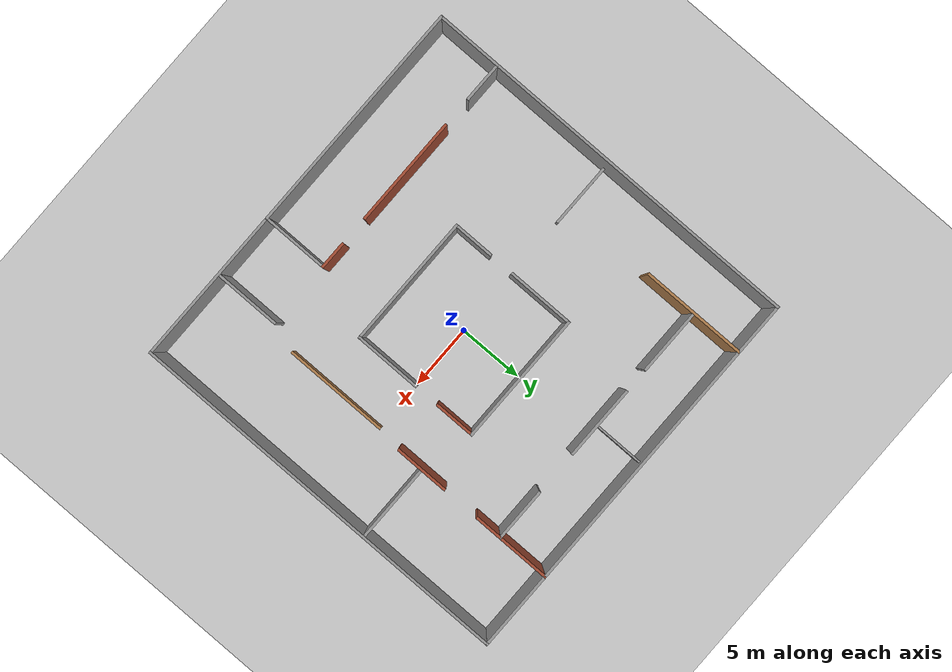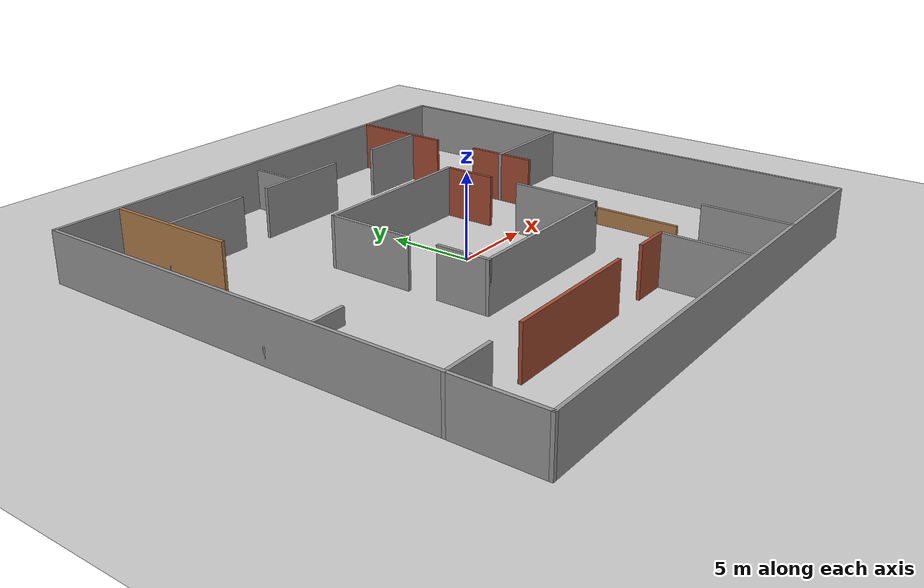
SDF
<sdf version="1.7">
 <world name="default">
  <light name="sun" type="directional">
   <pose>0 0 10 0 -0 0</pose>
   <diffuse>0.8 0.8 0.8 1</diffuse>
   <specular>0.2 0.2 0.2 1</specular>
   <attenuation>
    <range>1000</range>
    <constant>0.9</constant>
    <linear>0.01</linear>
    <quadratic>0.001</quadratic>
   </attenuation>
   <direction>-0.05 0.05 -0.99</direction>
   <spot><inner_angle>0</inner_angle><outer_angle>0</outer_angle><falloff>0</falloff></spot>
  </light>
  <model name="ground_plane">
   <static>1</static>
   <link name="link">
    <collision name="collision">
     <geometry><plane><normal>0 0 1</normal><size>100 100</size></plane></geometry>
     <surface>
      <contact><collide_bitmask>65535</collide_bitmask></contact>
      <friction><ode><mu>100</mu><mu2>50</mu2></ode></friction>
     </surface>
    </collision>
    <visual name="visual">
     <cast_shadows>0</cast_shadows>
     <geometry><plane><normal>0 0 1</normal><size>100 100</size></plane></geometry>
     <material>
      <script><uri>file://media/materials/scripts/gazebo.material</uri><name>Gazebo/Grey</name></script>
     </material>
    </visual>
   </link>
  </model>
  <gravity>0 0 -9.8</gravity>
  <magnetic_field>6e-06 2.3e-05 -4.2e-05</magnetic_field>
  <atmosphere type="adiabatic"/>
  <physics type="ode">
   <max_step_size>0.001</max_step_size>
   <real_time_factor>1</real_time_factor>
   <real_time_update_rate>1000</real_time_update_rate>
  </physics>
  <scene><ambient>0.4 0.4 0.4 1</ambient><background>0.7 0.7 0.7 1</background><shadows>1</shadows></scene>
  <spherical_coordinates>
   <surface_model>EARTH_WGS84</surface_model>
   <latitude_deg>0</latitude_deg>
   <longitude_deg>0</longitude_deg>
   <elevation>0</elevation>
   <heading_deg>0</heading_deg>
  </spherical_coordinates>
  <model name="Fence30">
   <link name="Wall_0">
    <collision name="Wall_0_Collision">
     <geometry><box><size>30.2 0.2 3</size></box></geometry>
     <pose>0 0 1.5 0 -0 0</pose>
    </collision>
    <visual name="Wall_0_Visual">
     <pose>0 0 1.5 0 -0 0</pose>
     <geometry><box><size>30.2 0.2 3</size></box></geometry>
     <material>
      <script><uri>file://media/materials/scripts/gazebo.material</uri><name>Gazebo/Grey</name></script>
      <ambient>1 1 1 1</ambient>
     </material>
     <meta><layer>0</layer></meta>
    </visual>
    <pose>0 -15 0 0 -0 3.14159</pose>
   </link>
   <link name="Wall_1">
    <collision name="Wall_1_Collision">
     <geometry><box><size>30.2 0.2 3</size></box></geometry>
     <pose>0 0 1.5 0 -0 0</pose>
    </collision>
    <visual name="Wall_1_Visual">
     <pose>0 0 1.5 0 -0 0</pose>
     <geometry><box><size>30.2 0.2 3</size></box></geometry>
     <material>
      <script><uri>file://media/materials/scripts/gazebo.material</uri><name>Gazebo/Grey</name></script>
      <ambient>1 1 1 1</ambient>
     </material>
     <meta><layer>0</layer></meta>
    </visual>
    <pose>-15 0 0 0 -0 1.5708</pose>
   </link>
   <link name="Wall_2">
    <collision name="Wall_2_Collision">
     <geometry><box><size>30.2 0.2 3</size></box></geometry>
     <pose>0 0 1.5 0 -0 0</pose>
    </collision>
    <visual name="Wall_2_Visual">
     <pose>0 0 1.5 0 -0 0</pose>
     <geometry><box><size>30.2 0.2 3</size></box></geometry>
     <material>
      <script><uri>file://media/materials/scripts/gazebo.material</uri><name>Gazebo/Grey</name></script>
      <ambient>1 1 1 1</ambient>
     </material>
     <meta><layer>0</layer></meta>
    </visual>
    <pose>0 15 0 0 -0 0</pose>
   </link>
   <link name="Wall_3">
    <collision name="Wall_3_Collision">
     <geometry><box><size>30.2 0.2 3</size></box></geometry>
     <pose>0 0 1.5 0 -0 0</pose>
    </collision>
    <visual name="Wall_3_Visual">
     <pose>0 0 1.5 0 -0 0</pose>
     <geometry><box><size>30.2 0.2 3</size></box></geometry>
     <material>
      <script><uri>file://media/materials/scripts/gazebo.material</uri><name>Gazebo/Grey</name></script>
      <ambient>1 1 1 1</ambient>
     </material>
     <meta><layer>0</layer></meta>
    </visual>
    <pose>15 0 0 0 -0 -1.5708</pose>
   </link>
   <static>1</static>
  </model>
  <model name="Office30">
   <link name="Wall_46">
    <pose>0 5 0 0 -0 0</pose>
    <visual name="Wall_46_Visual">
     <pose>0 0 1.5 0 -0 0</pose>
     <geometry><box><size>10.2 0.2 3</size></box></geometry>
     <material>
      <script><uri>file://media/materials/scripts/gazebo.material</uri><name>Gazebo/Grey</name></script>
      <ambient>1 1 1 1</ambient>
      <shader type="pixel"/>
     </material>
     <meta><layer>0</layer></meta>
    </visual>
    <collision name="Wall_46_Collision">
     <pose>0 0 1.5 0 -0 0</pose>
     <geometry><box><size>10.2 0.2 3</size></box></geometry>
     <surface>
      <friction>
       <ode><mu>1</mu><mu2>1</mu2><fdir1>0 0 0</fdir1><slip1>0</slip1><slip2>0</slip2></ode>
       <torsional>
        <coefficient>1</coefficient>
        <patch_radius>0</patch_radius>
        <surface_radius>0</surface_radius>
        <use_patch_radius>1</use_patch_radius>
        <ode><slip>0</slip></ode>
       </torsional>
      </friction>
      <bounce><restitution_coefficient>0</restitution_coefficient><threshold>1e+06</threshold></bounce>
      <contact>
       <collide_without_contact>0</collide_without_contact>
       <collide_without_contact_bitmask>1</collide_without_contact_bitmask>
       <collide_bitmask>1</collide_bitmask>
       <ode>
        <soft_cfm>0</soft_cfm>
        <soft_erp>0.2</soft_erp>
        <kp>1e+13</kp>
        <kd>1</kd>
        <max_vel>0.01</max_vel>
        <min_depth>0</min_depth>
       </ode>
       <bullet>
        <split_impulse>1</split_impulse>
        <split_impulse_penetration_threshold>-0.01</split_impulse_penetration_threshold>
        <soft_cfm>0</soft_cfm>
        <soft_erp>0.2</soft_erp>
        <kp>1e+13</kp>
        <kd>1</kd>
       </bullet>
      </contact>
     </surface>
    </collision>
   </link>
   <link name="Wall_48">
    <pose>0 -5 0 0 -0 0</pose>
    <visual name="Wall_48_Visual">
     <pose>0 0 1.5 0 -0 0</pose>
     <geometry><box><size>10.2 0.2 3</size></box></geometry>
     <material>
      <script><uri>file://media/materials/scripts/gazebo.material</uri><name>Gazebo/Grey</name></script>
      <ambient>1 1 1 1</ambient>
      <shader type="pixel"/>
     </material>
     <meta><layer>0</layer></meta>
    </visual>
    <collision name="Wall_48_Collision">
     <pose>0 0 1.5 0 -0 0</pose>
     <geometry><box><size>10.2 0.2 3</size></box></geometry>
     <surface>
      <friction>
       <ode><mu>1</mu><mu2>1</mu2><fdir1>0 0 0</fdir1><slip1>0</slip1><slip2>0</slip2></ode>
       <torsional>
        <coefficient>1</coefficient>
        <patch_radius>0</patch_radius>
        <surface_radius>0</surface_radius>
        <use_patch_radius>1</use_patch_radius>
        <ode><slip>0</slip></ode>
       </torsional>
      </friction>
      <bounce><restitution_coefficient>0</restitution_coefficient><threshold>1e+06</threshold></bounce>
      <contact>
       <collide_without_contact>0</collide_without_contact>
       <collide_without_contact_bitmask>1</collide_without_contact_bitmask>
       <collide_bitmask>1</collide_bitmask>
       <ode>
        <soft_cfm>0</soft_cfm>
        <soft_erp>0.2</soft_erp>
        <kp>1e+13</kp>
        <kd>1</kd>
        <max_vel>0.01</max_vel>
        <min_depth>0</min_depth>
       </ode>
       <bullet>
        <split_impulse>1</split_impulse>
        <split_impulse_penetration_threshold>-0.01</split_impulse_penetration_threshold>
        <soft_cfm>0</soft_cfm>
        <soft_erp>0.2</soft_erp>
        <kp>1e+13</kp>
        <kd>1</kd>
       </bullet>
      </contact>
     </surface>
    </collision>
   </link>
   <link name="Wall_50">
    <pose>5 -2.5 0 0 -0 1.5708</pose>
    <visual name="Wall_50_Visual">
     <pose>0 0 1.5 0 -0 0</pose>
     <geometry><box><size>5.2 0.2 3</size></box></geometry>
     <material>
      <script><uri>file://media/materials/scripts/gazebo.material</uri><name>Gazebo/Grey</name></script>
      <ambient>1 1 1 1</ambient>
      <shader type="pixel"/>
     </material>
     <meta><layer>0</layer></meta>
    </visual>
    <collision name="Wall_50_Collision">
     <pose>0 0 1.5 0 -0 0</pose>
     <geometry><box><size>5.2 0.2 3</size></box></geometry>
     <surface>
      <friction>
       <ode><mu>1</mu><mu2>1</mu2><fdir1>0 0 0</fdir1><slip1>0</slip1><slip2>0</slip2></ode>
       <torsional>
        <coefficient>1</coefficient>
        <patch_radius>0</patch_radius>
        <surface_radius>0</surface_radius>
        <use_patch_radius>1</use_patch_radius>
        <ode><slip>0</slip></ode>
       </torsional>
      </friction>
      <bounce><restitution_coefficient>0</restitution_coefficient><threshold>1e+06</threshold></bounce>
      <contact>
       <collide_without_contact>0</collide_without_contact>
       <collide_without_contact_bitmask>1</collide_without_contact_bitmask>
       <collide_bitmask>1</collide_bitmask>
       <ode>
        <soft_cfm>0</soft_cfm>
        <soft_erp>0.2</soft_erp>
        <kp>1e+13</kp>
        <kd>1</kd>
        <max_vel>0.01</max_vel>
        <min_depth>0</min_depth>
       </ode>
       <bullet>
        <split_impulse>1</split_impulse>
        <split_impulse_penetration_threshold>-0.01</split_impulse_penetration_threshold>
        <soft_cfm>0</soft_cfm>
        <soft_erp>0.2</soft_erp>
        <kp>1e+13</kp>
        <kd>1</kd>
       </bullet>
      </contact>
     </surface>
    </collision>
   </link>
   <link name="Wall_52">
    <pose>5 3.5 0 0 0 -1.5708</pose>
    <visual name="Wall_52_Visual">
     <pose>0 0 1.5 0 -0 0</pose>
     <geometry><box><size>3.2 0.2 3</size></box></geometry>
     <material>
      <script><uri>file://media/materials/scripts/gazebo.material</uri><name>Gazebo/Bricks</name></script>
      <ambient>1 1 1 1</ambient>
      <shader type="pixel"/>
     </material>
     <meta><layer>0</layer></meta>
    </visual>
    <collision name="Wall_52_Collision">
     <pose>0 0 1.5 0 -0 0</pose>
     <geometry><box><size>3.2 0.2 3</size></box></geometry>
     <surface>
      <friction>
       <ode><mu>1</mu><mu2>1</mu2><fdir1>0 0 0</fdir1><slip1>0</slip1><slip2>0</slip2></ode>
       <torsional>
        <coefficient>1</coefficient>
        <patch_radius>0</patch_radius>
        <surface_radius>0</surface_radius>
        <use_patch_radius>1</use_patch_radius>
        <ode><slip>0</slip></ode>
       </torsional>
      </friction>
      <bounce><restitution_coefficient>0</restitution_coefficient><threshold>1e+06</threshold></bounce>
      <contact>
       <collide_without_contact>0</collide_without_contact>
       <collide_without_contact_bitmask>1</collide_without_contact_bitmask>
       <collide_bitmask>1</collide_bitmask>
       <ode>
        <soft_cfm>0</soft_cfm>
        <soft_erp>0.2</soft_erp>
        <kp>1e+13</kp>
        <kd>1</kd>
        <max_vel>0.01</max_vel>
        <min_depth>0</min_depth>
       </ode>
       <bullet>
        <split_impulse>1</split_impulse>
        <split_impulse_penetration_threshold>-0.01</split_impulse_penetration_threshold>
        <soft_cfm>0</soft_cfm>
        <soft_erp>0.2</soft_erp>
        <kp>1e+13</kp>
        <kd>1</kd>
       </bullet>
      </contact>
     </surface>
    </collision>
   </link>
   <link name="Wall_54">
    <pose>9 -4 0 0 -0 1.5708</pose>
    <visual name="Wall_54_Visual">
     <pose>0 0 0.5 0 -0 0</pose>
     <geometry><box><size>8.2 0.2 1</size></box></geometry>
     <material>
      <script><uri>file://media/materials/scripts/gazebo.material</uri><name>Gazebo/Wood</name></script>
      <ambient>1 1 1 1</ambient>
      <shader type="pixel"/>
     </material>
     <meta><layer>0</layer></meta>
    </visual>
    <collision name="Wall_54_Collision">
     <pose>0 0 0.5 0 -0 0</pose>
     <geometry><box><size>8.2 0.2 1</size></box></geometry>
     <surface>
      <friction>
       <ode><mu>1</mu><mu2>1</mu2><fdir1>0 0 0</fdir1><slip1>0</slip1><slip2>0</slip2></ode>
       <torsional>
        <coefficient>1</coefficient>
        <patch_radius>0</patch_radius>
        <surface_radius>0</surface_radius>
        <use_patch_radius>1</use_patch_radius>
        <ode><slip>0</slip></ode>
       </torsional>
      </friction>
      <bounce><restitution_coefficient>0</restitution_coefficient><threshold>1e+06</threshold></bounce>
      <contact>
       <collide_without_contact>0</collide_without_contact>
       <collide_without_contact_bitmask>1</collide_without_contact_bitmask>
       <collide_bitmask>1</collide_bitmask>
       <ode>
        <soft_cfm>0</soft_cfm>
        <soft_erp>0.2</soft_erp>
        <kp>1e+13</kp>
        <kd>1</kd>
        <max_vel>0.01</max_vel>
        <min_depth>0</min_depth>
       </ode>
       <bullet>
        <split_impulse>1</split_impulse>
        <split_impulse_penetration_threshold>-0.01</split_impulse_penetration_threshold>
        <soft_cfm>0</soft_cfm>
        <soft_erp>0.2</soft_erp>
        <kp>1e+13</kp>
        <kd>1</kd>
       </bullet>
      </contact>
     </surface>
    </collision>
   </link>
   <link name="Wall_59">
    <pose>-5 2.5 0 0 0 -1.5708</pose>
    <visual name="Wall_59_Visual">
     <pose>0 0 1.5 0 -0 0</pose>
     <geometry><box><size>5.2 0.2 3</size></box></geometry>
     <material>
      <script><uri>file://media/materials/scripts/gazebo.material</uri><name>Gazebo/Grey</name></script>
      <ambient>1 1 1 1</ambient>
      <shader type="pixel"/>
     </material>
     <meta><layer>0</layer></meta>
    </visual>
    <collision name="Wall_59_Collision">
     <pose>0 0 1.5 0 -0 0</pose>
     <geometry><box><size>5.2 0.2 3</size></box></geometry>
     <surface>
      <friction>
       <ode><mu>1</mu><mu2>1</mu2><fdir1>0 0 0</fdir1><slip1>0</slip1><slip2>0</slip2></ode>
       <torsional>
        <coefficient>1</coefficient>
        <patch_radius>0</patch_radius>
        <surface_radius>0</surface_radius>
        <use_patch_radius>1</use_patch_radius>
        <ode><slip>0</slip></ode>
       </torsional>
      </friction>
      <bounce><restitution_coefficient>0</restitution_coefficient><threshold>1e+06</threshold></bounce>
      <contact>
       <collide_without_contact>0</collide_without_contact>
       <collide_without_contact_bitmask>1</collide_without_contact_bitmask>
       <collide_bitmask>1</collide_bitmask>
       <ode>
        <soft_cfm>0</soft_cfm>
        <soft_erp>0.2</soft_erp>
        <kp>1e+13</kp>
        <kd>1</kd>
        <max_vel>0.01</max_vel>
        <min_depth>0</min_depth>
       </ode>
       <bullet>
        <split_impulse>1</split_impulse>
        <split_impulse_penetration_threshold>-0.01</split_impulse_penetration_threshold>
        <soft_cfm>0</soft_cfm>
        <soft_erp>0.2</soft_erp>
        <kp>1e+13</kp>
        <kd>1</kd>
       </bullet>
      </contact>
     </surface>
    </collision>
   </link>
   <link name="Wall_61">
    <pose>-5 -3.5 0 0 -0 1.5708</pose>
    <visual name="Wall_61_Visual">
     <pose>0 0 1.5 0 -0 0</pose>
     <geometry><box><size>3.2 0.2 3</size></box></geometry>
     <material>
      <script><uri>file://media/materials/scripts/gazebo.material</uri><name>Gazebo/Grey</name></script>
      <ambient>1 1 1 1</ambient>
      <shader type="pixel"/>
     </material>
     <meta><layer>0</layer></meta>
    </visual>
    <collision name="Wall_61_Collision">
     <pose>0 0 1.5 0 -0 0</pose>
     <geometry><box><size>3.2 0.2 3</size></box></geometry>
     <surface>
      <friction>
       <ode><mu>1</mu><mu2>1</mu2><fdir1>0 0 0</fdir1><slip1>0</slip1><slip2>0</slip2></ode>
       <torsional>
        <coefficient>1</coefficient>
        <patch_radius>0</patch_radius>
        <surface_radius>0</surface_radius>
        <use_patch_radius>1</use_patch_radius>
        <ode><slip>0</slip></ode>
       </torsional>
      </friction>
      <bounce><restitution_coefficient>0</restitution_coefficient><threshold>1e+06</threshold></bounce>
      <contact>
       <collide_without_contact>0</collide_without_contact>
       <collide_without_contact_bitmask>1</collide_without_contact_bitmask>
       <collide_bitmask>1</collide_bitmask>
       <ode>
        <soft_cfm>0</soft_cfm>
        <soft_erp>0.2</soft_erp>
        <kp>1e+13</kp>
        <kd>1</kd>
        <max_vel>0.01</max_vel>
        <min_depth>0</min_depth>
       </ode>
       <bullet>
        <split_impulse>1</split_impulse>
        <split_impulse_penetration_threshold>-0.01</split_impulse_penetration_threshold>
        <soft_cfm>0</soft_cfm>
        <soft_erp>0.2</soft_erp>
        <kp>1e+13</kp>
        <kd>1</kd>
       </bullet>
      </contact>
     </surface>
    </collision>
   </link>
   <link name="Wall_63">
    <pose>9 4 0 0 -0 1.5708</pose>
    <visual name="Wall_63_Visual">
     <pose>0 0 1.5 0 -0 0</pose>
     <geometry><box><size>4.2 0.2 3</size></box></geometry>
     <material>
      <script><uri>file://media/materials/scripts/gazebo.material</uri><name>Gazebo/Bricks</name></script>
      <ambient>1 1 1 1</ambient>
      <shader type="pixel"/>
     </material>
     <meta><layer>0</layer></meta>
    </visual>
    <collision name="Wall_63_Collision">
     <pose>0 0 1.5 0 -0 0</pose>
     <geometry><box><size>4.2 0.2 3</size></box></geometry>
     <surface>
      <friction>
       <ode><mu>1</mu><mu2>1</mu2><fdir1>0 0 0</fdir1><slip1>0</slip1><slip2>0</slip2></ode>
       <torsional>
        <coefficient>1</coefficient>
        <patch_radius>0</patch_radius>
        <surface_radius>0</surface_radius>
        <use_patch_radius>1</use_patch_radius>
        <ode><slip>0</slip></ode>
       </torsional>
      </friction>
      <bounce><restitution_coefficient>0</restitution_coefficient><threshold>1e+06</threshold></bounce>
      <contact>
       <collide_without_contact>0</collide_without_contact>
       <collide_without_contact_bitmask>1</collide_without_contact_bitmask>
       <collide_bitmask>1</collide_bitmask>
       <ode>
        <soft_cfm>0</soft_cfm>
        <soft_erp>0.2</soft_erp>
        <kp>1e+13</kp>
        <kd>1</kd>
        <max_vel>0.01</max_vel>
        <min_depth>0</min_depth>
       </ode>
       <bullet>
        <split_impulse>1</split_impulse>
        <split_impulse_penetration_threshold>-0.01</split_impulse_penetration_threshold>
        <soft_cfm>0</soft_cfm>
        <soft_erp>0.2</soft_erp>
        <kp>1e+13</kp>
        <kd>1</kd>
       </bullet>
      </contact>
     </surface>
    </collision>
   </link>
   <link name="Wall_65">
    <pose>9 12 0 0 -0 1.5708</pose>
    <visual name="Wall_65_Visual">
     <pose>0 0 1.5 0 -0 0</pose>
     <geometry><box><size>6.2 0.2 3</size></box></geometry>
     <material>
      <script><uri>file://media/materials/scripts/gazebo.material</uri><name>Gazebo/Bricks</name></script>
      <ambient>1 1 1 1</ambient>
      <shader type="pixel"/>
     </material>
     <meta><layer>0</layer></meta>
    </visual>
    <collision name="Wall_65_Collision">
     <pose>0 0 1.5 0 -0 0</pose>
     <geometry><box><size>6.2 0.2 3</size></box></geometry>
     <surface>
      <friction>
       <ode><mu>1</mu><mu2>1</mu2><fdir1>0 0 0</fdir1><slip1>0</slip1><slip2>0</slip2></ode>
       <torsional>
        <coefficient>1</coefficient>
        <patch_radius>0</patch_radius>
        <surface_radius>0</surface_radius>
        <use_patch_radius>1</use_patch_radius>
        <ode><slip>0</slip></ode>
       </torsional>
      </friction>
      <bounce><restitution_coefficient>0</restitution_coefficient><threshold>1e+06</threshold></bounce>
      <contact>
       <collide_without_contact>0</collide_without_contact>
       <collide_without_contact_bitmask>1</collide_without_contact_bitmask>
       <collide_bitmask>1</collide_bitmask>
       <ode>
        <soft_cfm>0</soft_cfm>
        <soft_erp>0.2</soft_erp>
        <kp>1e+13</kp>
        <kd>1</kd>
        <max_vel>0.01</max_vel>
        <min_depth>0</min_depth>
       </ode>
       <bullet>
        <split_impulse>1</split_impulse>
        <split_impulse_penetration_threshold>-0.01</split_impulse_penetration_threshold>
        <soft_cfm>0</soft_cfm>
        <soft_erp>0.2</soft_erp>
        <kp>1e+13</kp>
        <kd>1</kd>
       </bullet>
      </contact>
     </surface>
    </collision>
   </link>
   <link name="Wall_67">
    <pose>-13.5 -10 0 0 -0 0</pose>
    <visual name="Wall_67_Visual">
     <pose>0 0 1.5 0 -0 0</pose>
     <geometry><box><size>3.2 0.2 3</size></box></geometry>
     <material>
      <script><uri>file://media/materials/scripts/gazebo.material</uri><name>Gazebo/Grey</name></script>
      <ambient>1 1 1 1</ambient>
      <shader type="pixel"/>
     </material>
     <meta><layer>0</layer></meta>
    </visual>
    <collision name="Wall_67_Collision">
     <pose>0 0 1.5 0 -0 0</pose>
     <geometry><box><size>3.2 0.2 3</size></box></geometry>
     <surface>
      <friction>
       <ode><mu>1</mu><mu2>1</mu2><fdir1>0 0 0</fdir1><slip1>0</slip1><slip2>0</slip2></ode>
       <torsional>
        <coefficient>1</coefficient>
        <patch_radius>0</patch_radius>
        <surface_radius>0</surface_radius>
        <use_patch_radius>1</use_patch_radius>
        <ode><slip>0</slip></ode>
       </torsional>
      </friction>
      <bounce><restitution_coefficient>0</restitution_coefficient><threshold>1e+06</threshold></bounce>
      <contact>
       <collide_without_contact>0</collide_without_contact>
       <collide_without_contact_bitmask>1</collide_without_contact_bitmask>
       <collide_bitmask>1</collide_bitmask>
       <ode>
        <soft_cfm>0</soft_cfm>
        <soft_erp>0.2</soft_erp>
        <kp>1e+13</kp>
        <kd>1</kd>
        <max_vel>0.01</max_vel>
        <min_depth>0</min_depth>
       </ode>
       <bullet>
        <split_impulse>1</split_impulse>
        <split_impulse_penetration_threshold>-0.01</split_impulse_penetration_threshold>
        <soft_cfm>0</soft_cfm>
        <soft_erp>0.2</soft_erp>
        <kp>1e+13</kp>
        <kd>1</kd>
       </bullet>
      </contact>
     </surface>
    </collision>
   </link>
   <link name="Wall_69">
    <pose>-5.47371 -10 0 0 -0 0</pose>
    <inertial>
     <inertia><ixx>0</ixx><ixy>0</ixy><ixz>0</ixz><iyy>0</iyy><iyz>0</iyz><izz>0</izz></inertia>
     <mass>0</mass>
    </inertial>
    <visual name="Wall_69_Visual">
     <pose>0 0 1.5 0 -0 0</pose>
     <geometry><box><size>8.48445 0.2 3</size></box></geometry>
     <material>
      <script><uri>file://media/materials/scripts/gazebo.material</uri><name>Gazebo/Bricks</name></script>
      <ambient>1 1 1 1</ambient>
      <shader type="pixel"/>
     </material>
     <meta><layer>0</layer></meta>
    </visual>
    <collision name="Wall_69_Collision">
     <pose>0 0 1.5 0 -0 0</pose>
     <geometry><box><size>8.48445 0.2 3</size></box></geometry>
     <surface>
      <friction>
       <ode><mu>1</mu><mu2>1</mu2><fdir1>0 0 0</fdir1><slip1>0</slip1><slip2>0</slip2></ode>
       <torsional>
        <coefficient>1</coefficient>
        <patch_radius>0</patch_radius>
        <surface_radius>0</surface_radius>
        <use_patch_radius>1</use_patch_radius>
        <ode><slip>0</slip></ode>
       </torsional>
      </friction>
      <bounce><restitution_coefficient>0</restitution_coefficient><threshold>1e+06</threshold></bounce>
      <contact>
       <collide_without_contact>0</collide_without_contact>
       <collide_without_contact_bitmask>1</collide_without_contact_bitmask>
       <collide_bitmask>1</collide_bitmask>
       <ode>
        <soft_cfm>0</soft_cfm>
        <soft_erp>0.2</soft_erp>
        <kp>1e+13</kp>
        <kd>1</kd>
        <max_vel>0.01</max_vel>
        <min_depth>0</min_depth>
       </ode>
       <bullet>
        <split_impulse>1</split_impulse>
        <split_impulse_penetration_threshold>-0.01</split_impulse_penetration_threshold>
        <soft_cfm>0</soft_cfm>
        <soft_erp>0.2</soft_erp>
        <kp>1e+13</kp>
        <kd>1</kd>
       </bullet>
      </contact>
     </surface>
    </collision>
   </link>
   <link name="Wall_71">
    <pose>2 -10 0 0 -0 0</pose>
    <visual name="Wall_71_Visual">
     <pose>0 0 1.5 0 -0 0</pose>
     <geometry><box><size>2.2 0.2 3</size></box></geometry>
     <material>
      <script><uri>file://media/materials/scripts/gazebo.material</uri><name>Gazebo/Bricks</name></script>
      <ambient>1 1 1 1</ambient>
      <shader type="pixel"/>
     </material>
     <meta><layer>0</layer></meta>
    </visual>
    <collision name="Wall_71_Collision">
     <pose>0 0 1.5 0 -0 0</pose>
     <geometry><box><size>2.2 0.2 3</size></box></geometry>
     <surface>
      <friction>
       <ode><mu>1</mu><mu2>1</mu2><fdir1>0 0 0</fdir1><slip1>0</slip1><slip2>0</slip2></ode>
       <torsional>
        <coefficient>1</coefficient>
        <patch_radius>0</patch_radius>
        <surface_radius>0</surface_radius>
        <use_patch_radius>1</use_patch_radius>
        <ode><slip>0</slip></ode>
       </torsional>
      </friction>
      <bounce><restitution_coefficient>0</restitution_coefficient><threshold>1e+06</threshold></bounce>
      <contact>
       <collide_without_contact>0</collide_without_contact>
       <collide_without_contact_bitmask>1</collide_without_contact_bitmask>
       <collide_bitmask>1</collide_bitmask>
       <ode>
        <soft_cfm>0</soft_cfm>
        <soft_erp>0.2</soft_erp>
        <kp>1e+13</kp>
        <kd>1</kd>
        <max_vel>0.01</max_vel>
        <min_depth>0</min_depth>
       </ode>
       <bullet>
        <split_impulse>1</split_impulse>
        <split_impulse_penetration_threshold>-0.01</split_impulse_penetration_threshold>
        <soft_cfm>0</soft_cfm>
        <soft_erp>0.2</soft_erp>
        <kp>1e+13</kp>
        <kd>1</kd>
       </bullet>
      </contact>
     </surface>
    </collision>
   </link>
   <link name="Wall_72">
    <pose>3 -12.5 0 0 0 -1.5708</pose>
    <visual name="Wall_72_Visual">
     <pose>0 0 1.5 0 -0 0</pose>
     <geometry><box><size>5.2 0.2 3</size></box></geometry>
     <material>
      <script><uri>file://media/materials/scripts/gazebo.material</uri><name>Gazebo/Grey</name></script>
      <ambient>1 1 1 1</ambient>
      <shader type="pixel"/>
     </material>
     <meta><layer>0</layer></meta>
    </visual>
    <collision name="Wall_72_Collision">
     <pose>0 0 1.5 0 -0 0</pose>
     <geometry><box><size>5.2 0.2 3</size></box></geometry>
     <surface>
      <friction>
       <ode><mu>1</mu><mu2>1</mu2><fdir1>0 0 0</fdir1><slip1>0</slip1><slip2>0</slip2></ode>
       <torsional>
        <coefficient>1</coefficient>
        <patch_radius>0</patch_radius>
        <surface_radius>0</surface_radius>
        <use_patch_radius>1</use_patch_radius>
        <ode><slip>0</slip></ode>
       </torsional>
      </friction>
      <bounce><restitution_coefficient>0</restitution_coefficient><threshold>1e+06</threshold></bounce>
      <contact>
       <collide_without_contact>0</collide_without_contact>
       <collide_without_contact_bitmask>1</collide_without_contact_bitmask>
       <collide_bitmask>1</collide_bitmask>
       <ode>
        <soft_cfm>0</soft_cfm>
        <soft_erp>0.2</soft_erp>
        <kp>1e+13</kp>
        <kd>1</kd>
        <max_vel>0.01</max_vel>
        <min_depth>0</min_depth>
       </ode>
       <bullet>
        <split_impulse>1</split_impulse>
        <split_impulse_penetration_threshold>-0.01</split_impulse_penetration_threshold>
        <soft_cfm>0</soft_cfm>
        <soft_erp>0.2</soft_erp>
        <kp>1e+13</kp>
        <kd>1</kd>
       </bullet>
      </contact>
     </surface>
    </collision>
   </link>
   <link name="Wall_75">
    <pose>8 -12.5 0 0 0 -1.5708</pose>
    <visual name="Wall_75_Visual">
     <pose>0 0 1.5 0 -0 0</pose>
     <geometry><box><size>5.2 0.2 3</size></box></geometry>
     <material>
      <script><uri>file://media/materials/scripts/gazebo.material</uri><name>Gazebo/Grey</name></script>
      <ambient>1 1 1 1</ambient>
      <shader type="pixel"/>
     </material>
     <meta><layer>0</layer></meta>
    </visual>
    <collision name="Wall_75_Collision">
     <pose>0 0 1.5 0 -0 0</pose>
     <geometry><box><size>5.2 0.2 3</size></box></geometry>
     <surface>
      <friction>
       <ode><mu>1</mu><mu2>1</mu2><fdir1>0 0 0</fdir1><slip1>0</slip1><slip2>0</slip2></ode>
       <torsional>
        <coefficient>1</coefficient>
        <patch_radius>0</patch_radius>
        <surface_radius>0</surface_radius>
        <use_patch_radius>1</use_patch_radius>
        <ode><slip>0</slip></ode>
       </torsional>
      </friction>
      <bounce><restitution_coefficient>0</restitution_coefficient><threshold>1e+06</threshold></bounce>
      <contact>
       <collide_without_contact>0</collide_without_contact>
       <collide_without_contact_bitmask>1</collide_without_contact_bitmask>
       <collide_bitmask>1</collide_bitmask>
       <ode>
        <soft_cfm>0</soft_cfm>
        <soft_erp>0.2</soft_erp>
        <kp>1e+13</kp>
        <kd>1</kd>
        <max_vel>0.01</max_vel>
        <min_depth>0</min_depth>
       </ode>
       <bullet>
        <split_impulse>1</split_impulse>
        <split_impulse_penetration_threshold>-0.01</split_impulse_penetration_threshold>
        <soft_cfm>0</soft_cfm>
        <soft_erp>0.2</soft_erp>
        <kp>1e+13</kp>
        <kd>1</kd>
       </bullet>
      </contact>
     </surface>
    </collision>
   </link>
   <link name="Wall_77">
    <pose>12 4 0 0 -0 0</pose>
    <visual name="Wall_77_Visual">
     <pose>0 0 1.5 0 -0 0</pose>
     <geometry><box><size>6.2 0.2 3</size></box></geometry>
     <material>
      <script><uri>file://media/materials/scripts/gazebo.material</uri><name>Gazebo/Grey</name></script>
      <ambient>1 1 1 1</ambient>
      <shader type="pixel"/>
     </material>
     <meta><layer>0</layer></meta>
    </visual>
    <collision name="Wall_77_Collision">
     <pose>0 0 1.5 0 -0 0</pose>
     <geometry><box><size>6.2 0.2 3</size></box></geometry>
     <surface>
      <friction>
       <ode><mu>1</mu><mu2>1</mu2><fdir1>0 0 0</fdir1><slip1>0</slip1><slip2>0</slip2></ode>
       <torsional>
        <coefficient>1</coefficient>
        <patch_radius>0</patch_radius>
        <surface_radius>0</surface_radius>
        <use_patch_radius>1</use_patch_radius>
        <ode><slip>0</slip></ode>
       </torsional>
      </friction>
      <bounce><restitution_coefficient>0</restitution_coefficient><threshold>1e+06</threshold></bounce>
      <contact>
       <collide_without_contact>0</collide_without_contact>
       <collide_without_contact_bitmask>1</collide_without_contact_bitmask>
       <collide_bitmask>1</collide_bitmask>
       <ode>
        <soft_cfm>0</soft_cfm>
        <soft_erp>0.2</soft_erp>
        <kp>1e+13</kp>
        <kd>1</kd>
        <max_vel>0.01</max_vel>
        <min_depth>0</min_depth>
       </ode>
       <bullet>
        <split_impulse>1</split_impulse>
        <split_impulse_penetration_threshold>-0.01</split_impulse_penetration_threshold>
        <soft_cfm>0</soft_cfm>
        <soft_erp>0.2</soft_erp>
        <kp>1e+13</kp>
        <kd>1</kd>
       </bullet>
      </contact>
     </surface>
    </collision>
   </link>
   <link name="Wall_79">
    <pose>7 11 0 0 -0 3.14159</pose>
    <visual name="Wall_79_Visual">
     <pose>0 0 1.5 0 -0 0</pose>
     <geometry><box><size>4.2 0.2 3</size></box></geometry>
     <material>
      <script><uri>file://media/materials/scripts/gazebo.material</uri><name>Gazebo/Grey</name></script>
      <ambient>1 1 1 1</ambient>
      <shader type="pixel"/>
     </material>
     <meta><layer>0</layer></meta>
    </visual>
    <collision name="Wall_79_Collision">
     <pose>0 0 1.5 0 -0 0</pose>
     <geometry><box><size>4.2 0.2 3</size></box></geometry>
     <surface>
      <friction>
       <ode><mu>1</mu><mu2>1</mu2><fdir1>0 0 0</fdir1><slip1>0</slip1><slip2>0</slip2></ode>
       <torsional>
        <coefficient>1</coefficient>
        <patch_radius>0</patch_radius>
        <surface_radius>0</surface_radius>
        <use_patch_radius>1</use_patch_radius>
        <ode><slip>0</slip></ode>
       </torsional>
      </friction>
      <bounce><restitution_coefficient>0</restitution_coefficient><threshold>1e+06</threshold></bounce>
      <contact>
       <collide_without_contact>0</collide_without_contact>
       <collide_without_contact_bitmask>1</collide_without_contact_bitmask>
       <collide_bitmask>1</collide_bitmask>
       <ode>
        <soft_cfm>0</soft_cfm>
        <soft_erp>0.2</soft_erp>
        <kp>1e+13</kp>
        <kd>1</kd>
        <max_vel>0.01</max_vel>
        <min_depth>0</min_depth>
       </ode>
       <bullet>
        <split_impulse>1</split_impulse>
        <split_impulse_penetration_threshold>-0.01</split_impulse_penetration_threshold>
        <soft_cfm>0</soft_cfm>
        <soft_erp>0.2</soft_erp>
        <kp>1e+13</kp>
        <kd>1</kd>
       </bullet>
      </contact>
     </surface>
    </collision>
   </link>
   <link name="Wall_81">
    <pose>-1.25 11 0 0 -0 3.14159</pose>
    <visual name="Wall_81_Visual">
     <pose>0 0 1.5 0 -0 0</pose>
     <geometry><box><size>5.7 0.2 3</size></box></geometry>
     <material>
      <script><uri>file://media/materials/scripts/gazebo.material</uri><name>Gazebo/Grey</name></script>
      <ambient>1 1 1 1</ambient>
      <shader type="pixel"/>
     </material>
     <meta><layer>0</layer></meta>
    </visual>
    <collision name="Wall_81_Collision">
     <pose>0 0 1.5 0 -0 0</pose>
     <geometry><box><size>5.7 0.2 3</size></box></geometry>
     <surface>
      <friction>
       <ode><mu>1</mu><mu2>1</mu2><fdir1>0 0 0</fdir1><slip1>0</slip1><slip2>0</slip2></ode>
       <torsional>
        <coefficient>1</coefficient>
        <patch_radius>0</patch_radius>
        <surface_radius>0</surface_radius>
        <use_patch_radius>1</use_patch_radius>
        <ode><slip>0</slip></ode>
       </torsional>
      </friction>
      <bounce><restitution_coefficient>0</restitution_coefficient><threshold>1e+06</threshold></bounce>
      <contact>
       <collide_without_contact>0</collide_without_contact>
       <collide_without_contact_bitmask>1</collide_without_contact_bitmask>
       <collide_bitmask>1</collide_bitmask>
       <ode>
        <soft_cfm>0</soft_cfm>
        <soft_erp>0.2</soft_erp>
        <kp>1e+13</kp>
        <kd>1</kd>
        <max_vel>0.01</max_vel>
        <min_depth>0</min_depth>
       </ode>
       <bullet>
        <split_impulse>1</split_impulse>
        <split_impulse_penetration_threshold>-0.01</split_impulse_penetration_threshold>
        <soft_cfm>0</soft_cfm>
        <soft_erp>0.2</soft_erp>
        <kp>1e+13</kp>
        <kd>1</kd>
       </bullet>
      </contact>
     </surface>
    </collision>
   </link>
   <link name="Wall_83">
    <pose>-8.5 11 0 0 -0 3.14159</pose>
    <visual name="Wall_83_Visual">
     <pose>0 0 1.5 0 -0 0</pose>
     <geometry><box><size>5.2 0.2 3</size></box></geometry>
     <material>
      <script><uri>file://media/materials/scripts/gazebo.material</uri><name>Gazebo/Grey</name></script>
      <ambient>1 1 1 1</ambient>
      <shader type="pixel"/>
     </material>
     <meta><layer>0</layer></meta>
    </visual>
    <collision name="Wall_83_Collision">
     <pose>0 0 1.5 0 -0 0</pose>
     <geometry><box><size>5.2 0.2 3</size></box></geometry>
     <surface>
      <friction>
       <ode><mu>1</mu><mu2>1</mu2><fdir1>0 0 0</fdir1><slip1>0</slip1><slip2>0</slip2></ode>
       <torsional>
        <coefficient>1</coefficient>
        <patch_radius>0</patch_radius>
        <surface_radius>0</surface_radius>
        <use_patch_radius>1</use_patch_radius>
        <ode><slip>0</slip></ode>
       </torsional>
      </friction>
      <bounce><restitution_coefficient>0</restitution_coefficient><threshold>1e+06</threshold></bounce>
      <contact>
       <collide_without_contact>0</collide_without_contact>
       <collide_without_contact_bitmask>1</collide_without_contact_bitmask>
       <collide_bitmask>1</collide_bitmask>
       <ode>
        <soft_cfm>0</soft_cfm>
        <soft_erp>0.2</soft_erp>
        <kp>1e+13</kp>
        <kd>1</kd>
        <max_vel>0.01</max_vel>
        <min_depth>0</min_depth>
       </ode>
       <bullet>
        <split_impulse>1</split_impulse>
        <split_impulse_penetration_threshold>-0.01</split_impulse_penetration_threshold>
        <soft_cfm>0</soft_cfm>
        <soft_erp>0.2</soft_erp>
        <kp>1e+13</kp>
        <kd>1</kd>
       </bullet>
      </contact>
     </surface>
    </collision>
   </link>
   <link name="Wall_85">
    <pose>-11 11 0 0 0 -1.5708</pose>
    <visual name="Wall_85_Visual">
     <pose>0 0 1.5 0 -0 0</pose>
     <geometry><box><size>8.2 0.2 3</size></box></geometry>
     <material>
      <script><uri>file://media/materials/scripts/gazebo.material</uri><name>Gazebo/Wood</name></script>
      <ambient>1 1 1 1</ambient>
      <shader type="pixel"/>
     </material>
     <meta><layer>0</layer></meta>
    </visual>
    <collision name="Wall_85_Collision">
     <pose>0 0 1.5 0 -0 0</pose>
     <geometry><box><size>8.2 0.2 3</size></box></geometry>
     <surface>
      <friction>
       <ode><mu>1</mu><mu2>1</mu2><fdir1>0 0 0</fdir1><slip1>0</slip1><slip2>0</slip2></ode>
       <torsional>
        <coefficient>1</coefficient>
        <patch_radius>0</patch_radius>
        <surface_radius>0</surface_radius>
        <use_patch_radius>1</use_patch_radius>
        <ode><slip>0</slip></ode>
       </torsional>
      </friction>
      <bounce><restitution_coefficient>0</restitution_coefficient><threshold>1e+06</threshold></bounce>
      <contact>
       <collide_without_contact>0</collide_without_contact>
       <collide_without_contact_bitmask>1</collide_without_contact_bitmask>
       <collide_bitmask>1</collide_bitmask>
       <ode>
        <soft_cfm>0</soft_cfm>
        <soft_erp>0.2</soft_erp>
        <kp>1e+13</kp>
        <kd>1</kd>
        <max_vel>0.01</max_vel>
        <min_depth>0</min_depth>
       </ode>
       <bullet>
        <split_impulse>1</split_impulse>
        <split_impulse_penetration_threshold>-0.01</split_impulse_penetration_threshold>
        <soft_cfm>0</soft_cfm>
        <soft_erp>0.2</soft_erp>
        <kp>1e+13</kp>
        <kd>1</kd>
       </bullet>
      </contact>
     </surface>
    </collision>
   </link>
   <link name="Wall_87">
    <pose>-12.5 0 0 0 -0 3.14159</pose>
    <visual name="Wall_87_Visual">
     <pose>0 0 0.5 0 -0 0</pose>
     <geometry><box><size>5.2 0.2 1</size></box></geometry>
     <material>
      <script><uri>file://media/materials/scripts/gazebo.material</uri><name>Gazebo/Grey</name></script>
      <ambient>1 1 1 1</ambient>
      <shader type="pixel"/>
     </material>
     <meta><layer>0</layer></meta>
    </visual>
    <collision name="Wall_87_Collision">
     <pose>0 0 0.5 0 -0 0</pose>
     <geometry><box><size>5.2 0.2 1</size></box></geometry>
     <surface>
      <friction>
       <ode><mu>1</mu><mu2>1</mu2><fdir1>0 0 0</fdir1><slip1>0</slip1><slip2>0</slip2></ode>
       <torsional>
        <coefficient>1</coefficient>
        <patch_radius>0</patch_radius>
        <surface_radius>0</surface_radius>
        <use_patch_radius>1</use_patch_radius>
        <ode><slip>0</slip></ode>
       </torsional>
      </friction>
      <bounce><restitution_coefficient>0</restitution_coefficient><threshold>1e+06</threshold></bounce>
      <contact>
       <collide_without_contact>0</collide_without_contact>
       <collide_without_contact_bitmask>1</collide_without_contact_bitmask>
       <collide_bitmask>1</collide_bitmask>
       <ode>
        <soft_cfm>0</soft_cfm>
        <soft_erp>0.2</soft_erp>
        <kp>1e+13</kp>
        <kd>1</kd>
        <max_vel>0.01</max_vel>
        <min_depth>0</min_depth>
       </ode>
       <bullet>
        <split_impulse>1</split_impulse>
        <split_impulse_penetration_threshold>-0.01</split_impulse_penetration_threshold>
        <soft_cfm>0</soft_cfm>
        <soft_erp>0.2</soft_erp>
        <kp>1e+13</kp>
        <kd>1</kd>
       </bullet>
      </contact>
     </surface>
    </collision>
   </link>
   <link name="Wall_89">
    <pose>-1 13 0 0 -0 1.5708</pose>
    <visual name="Wall_89_Visual">
     <pose>0 0 1.25 0 -0 0</pose>
     <geometry><box><size>4.15 0.15 2.5</size></box></geometry>
     <material>
      <script><uri>file://media/materials/scripts/gazebo.material</uri><name>Gazebo/Grey</name></script>
      <ambient>1 1 1 1</ambient>
      <shader type="pixel"/>
     </material>
     <meta><layer>0</layer></meta>
    </visual>
    <collision name="Wall_89_Collision">
     <pose>0 0 1.25 0 -0 0</pose>
     <geometry><box><size>4.15 0.15 2.5</size></box></geometry>
     <surface>
      <friction>
       <ode><mu>1</mu><mu2>1</mu2><fdir1>0 0 0</fdir1><slip1>0</slip1><slip2>0</slip2></ode>
       <torsional>
        <coefficient>1</coefficient>
        <patch_radius>0</patch_radius>
        <surface_radius>0</surface_radius>
        <use_patch_radius>1</use_patch_radius>
        <ode><slip>0</slip></ode>
       </torsional>
      </friction>
      <bounce><restitution_coefficient>0</restitution_coefficient><threshold>1e+06</threshold></bounce>
      <contact>
       <collide_without_contact>0</collide_without_contact>
       <collide_without_contact_bitmask>1</collide_without_contact_bitmask>
       <collide_bitmask>1</collide_bitmask>
       <ode>
        <soft_cfm>0</soft_cfm>
        <soft_erp>0.2</soft_erp>
        <kp>1e+13</kp>
        <kd>1</kd>
        <max_vel>0.01</max_vel>
        <min_depth>0</min_depth>
       </ode>
       <bullet>
        <split_impulse>1</split_impulse>
        <split_impulse_penetration_threshold>-0.01</split_impulse_penetration_threshold>
        <soft_cfm>0</soft_cfm>
        <soft_erp>0.2</soft_erp>
        <kp>1e+13</kp>
        <kd>1</kd>
       </bullet>
      </contact>
     </surface>
    </collision>
   </link>
   <static>1</static>
  </model>
 </world>
</sdf>
